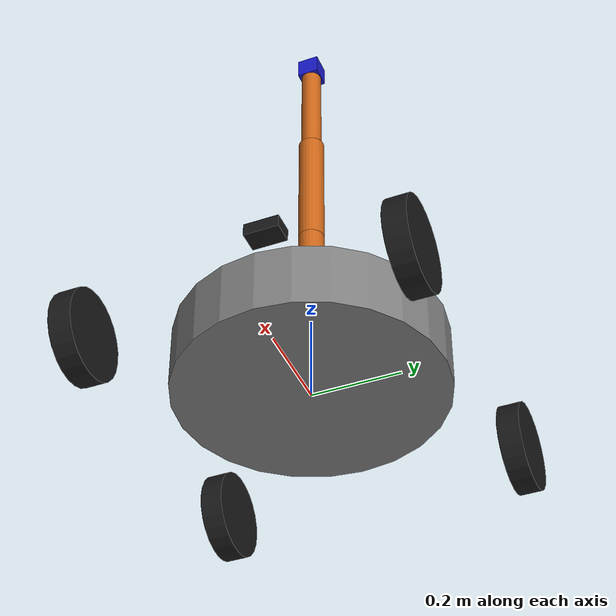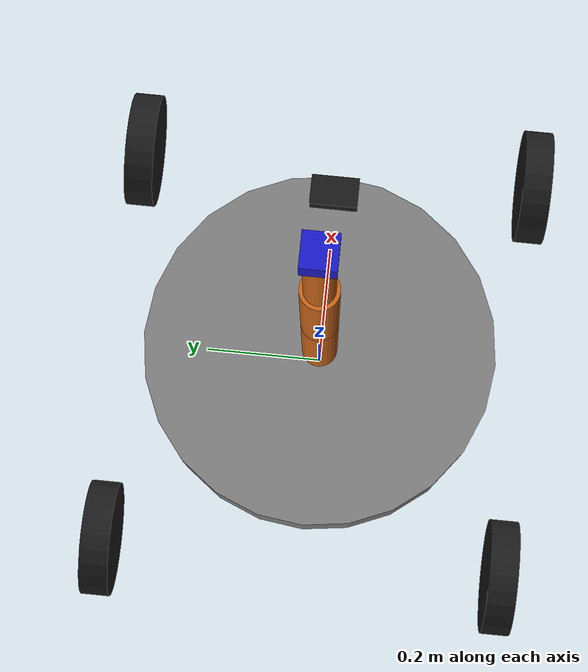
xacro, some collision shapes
<?xml version="1.0"?>
<robot xmlns:xacro="http://www.ros.org/wiki/xacro" name="complex_robot">
  <!-- Complex robot with includes and multiple components -->

  <!-- Include common macros -->
  <xacro:include filename="$(find test_robot)/common_macros.xacro"/>

  <!-- Robot properties -->
  <xacro:property name="base_mass" value="15.0"/>
  <xacro:property name="base_radius" value="0.3"/>
  <xacro:property name="base_height" value="0.15"/>

  <xacro:property name="wheel_radius" value="0.1"/>
  <xacro:property name="wheel_length" value="0.05"/>
  <xacro:property name="wheel_mass" value="1.0"/>
  <xacro:property name="wheel_offset" value="0.35"/>

  <xacro:property name="arm_segment_length" value="0.3"/>
  <xacro:property name="arm_segment_radius" value="0.03"/>
  <xacro:property name="arm_segment_mass" value="1.5"/>

  <!-- Base link -->
  <link name="base_link">
    <visual>
      <origin xyz="0 0 ${base_height/2}" rpy="0 0 0"/>
      <geometry>
        <cylinder radius="${base_radius}" length="${base_height}"/>
      </geometry>
      <material name="base_color">
        <color rgba="0.5 0.5 0.5 1"/>
      </material>
    </visual>
    <collision>
      <origin xyz="0 0 ${base_height/2}" rpy="0 0 0"/>
      <geometry>
        <cylinder radius="${base_radius}" length="${base_height}"/>
      </geometry>
    </collision>
    <inertial>
      <origin xyz="0 0 ${base_height/2}" rpy="0 0 0"/>
      <mass value="${base_mass}"/>
      <inertia ixx="${base_mass * (3 * base_radius * base_radius + base_height * base_height) / 12}"
               ixy="0" ixz="0"
               iyy="${base_mass * (3 * base_radius * base_radius + base_height * base_height) / 12}"
               iyz="0"
               izz="${base_mass * base_radius * base_radius / 2}"/>
    </inertial>
  </link>

  <!-- Wheels using macro -->
  <xacro:wheel name="front_left_wheel" parent="base_link"
               origin_xyz="${wheel_offset} ${wheel_offset} 0" origin_rpy="1.57079 0 0"
               radius="${wheel_radius}" length="${wheel_length}" mass="${wheel_mass}"/>

  <xacro:wheel name="front_right_wheel" parent="base_link"
               origin_xyz="${wheel_offset} ${-wheel_offset} 0" origin_rpy="1.57079 0 0"
               radius="${wheel_radius}" length="${wheel_length}" mass="${wheel_mass}"/>

  <xacro:wheel name="rear_left_wheel" parent="base_link"
               origin_xyz="${-wheel_offset} ${wheel_offset} 0" origin_rpy="1.57079 0 0"
               radius="${wheel_radius}" length="${wheel_length}" mass="${wheel_mass}"/>

  <xacro:wheel name="rear_right_wheel" parent="base_link"
               origin_xyz="${-wheel_offset} ${-wheel_offset} 0" origin_rpy="1.57079 0 0"
               radius="${wheel_radius}" length="${wheel_length}" mass="${wheel_mass}"/>

  <!-- Robotic arm using macros -->
  <xacro:arm_segment name="arm_base" parent="base_link"
                     origin_xyz="0 0 ${base_height}" origin_rpy="0 0 0"
                     length="${arm_segment_length}" radius="${arm_segment_radius}" mass="${arm_segment_mass}"/>

  <xacro:arm_segment name="arm_segment_1" parent="arm_base"
                     origin_xyz="0 0 ${arm_segment_length}" origin_rpy="0 0 0"
                     length="${arm_segment_length}" radius="${arm_segment_radius}" mass="${arm_segment_mass}"/>

  <xacro:arm_segment name="arm_segment_2" parent="arm_segment_1"
                     origin_xyz="0 0 ${arm_segment_length}" origin_rpy="0 0 0"
                     length="${arm_segment_length * 0.8}" radius="${arm_segment_radius * 0.8}" mass="${arm_segment_mass * 0.8}"/>

  <!-- End effector -->
  <link name="end_effector">
    <visual>
      <origin xyz="0 0 0.025" rpy="0 0 0"/>
      <geometry>
        <mesh filename="package://test_robot/meshes/gripper.stl" scale="0.001 0.001 0.001"/>
      </geometry>
      <material name="gripper_color">
        <color rgba="0.1 0.1 0.8 1"/>
      </material>
    </visual>
    <collision>
      <origin xyz="0 0 0.025" rpy="0 0 0"/>
      <geometry>
        <box size="0.05 0.05 0.05"/>
      </geometry>
    </collision>
    <inertial>
      <mass value="0.5"/>
      <inertia ixx="0.001" ixy="0" ixz="0" iyy="0.001" iyz="0" izz="0.001"/>
    </inertial>
  </link>

  <joint name="end_effector_joint" type="fixed">
    <parent link="arm_segment_2"/>
    <child link="end_effector"/>
    <origin xyz="0 0 ${arm_segment_length * 0.8}" rpy="0 0 0"/>
  </joint>

  <!-- Camera sensor -->
  <link name="camera_link">
    <visual>
      <origin xyz="0 0 0" rpy="0 0 0"/>
      <geometry>
        <box size="0.05 0.08 0.03"/>
      </geometry>
      <material name="camera_color">
        <color rgba="0.1 0.1 0.1 1"/>
      </material>
    </visual>
    <collision>
      <origin xyz="0 0 0" rpy="0 0 0"/>
      <geometry>
        <box size="0.05 0.08 0.03"/>
      </geometry>
    </collision>
    <inertial>
      <mass value="0.2"/>
      <inertia ixx="0.0001" ixy="0" ixz="0" iyy="0.0001" iyz="0" izz="0.0001"/>
    </inertial>
  </link>

  <joint name="camera_joint" type="revolute">
    <parent link="base_link"/>
    <child link="camera_link"/>
    <origin xyz="0.25 0 ${base_height + 0.1}" rpy="0 0 0"/>
    <axis xyz="0 0 1"/>
    <limit lower="-1.57" upper="1.57" effort="5" velocity="0.5"/>
  </joint>
</robot>

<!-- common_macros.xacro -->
<robot xmlns:xacro="http://www.ros.org/wiki/xacro">
  <!-- Common macros for robot parts -->

  <xacro:macro name="wheel" params="name parent origin_xyz origin_rpy radius length mass">
    <link name="${name}">
      <visual>
        <origin xyz="0 0 0" rpy="0 0 0"/>
        <geometry>
          <cylinder radius="${radius}" length="${length}"/>
        </geometry>
        <material name="black">
          <color rgba="0.1 0.1 0.1 1"/>
        </material>
      </visual>
      <collision>
        <origin xyz="0 0 0" rpy="0 0 0"/>
        <geometry>
          <cylinder radius="${radius}" length="${length}"/>
        </geometry>
      </collision>
      <inertial>
        <mass value="${mass}"/>
        <inertia ixx="${mass * (3 * radius * radius + length * length) / 12}"
                 ixy="0" ixz="0"
                 iyy="${mass * (3 * radius * radius + length * length) / 12}"
                 iyz="0"
                 izz="${mass * radius * radius / 2}"/>
      </inertial>
    </link>

    <joint name="${name}_joint" type="continuous">
      <parent link="${parent}"/>
      <child link="${name}"/>
      <origin xyz="${origin_xyz}" rpy="${origin_rpy}"/>
      <axis xyz="0 0 1"/>
      <dynamics damping="0.1" friction="0.1"/>
    </joint>
  </xacro:macro>

  <xacro:macro name="arm_segment" params="name parent origin_xyz origin_rpy length radius mass joint_type:=revolute lower:=-1.57 upper:=1.57">
    <link name="${name}">
      <visual>
        <origin xyz="0 0 ${length/2}" rpy="0 0 0"/>
        <geometry>
          <cylinder radius="${radius}" length="${length}"/>
        </geometry>
        <material name="arm_color">
          <color rgba="0.8 0.4 0.1 1"/>
        </material>
      </visual>
      <collision>
        <origin xyz="0 0 ${length/2}" rpy="0 0 0"/>
        <geometry>
          <cylinder radius="${radius}" length="${length}"/>
        </geometry>
      </collision>
      <inertial>
        <origin xyz="0 0 ${length/2}" rpy="0 0 0"/>
        <mass value="${mass}"/>
        <inertia ixx="${mass * (3 * radius * radius + length * length) / 12}"
                 ixy="0" ixz="0"
                 iyy="${mass * (3 * radius * radius + length * length) / 12}"
                 iyz="0"
                 izz="${mass * radius * radius / 2}"/>
      </inertial>
    </link>

    <joint name="${name}_joint" type="${joint_type}">
      <parent link="${parent}"/>
      <child link="${name}"/>
      <origin xyz="${origin_xyz}" rpy="${origin_rpy}"/>
      <axis xyz="0 0 1"/>
      <xacro:if value="${joint_type == 'revolute'}">
        <limit lower="${lower}" upper="${upper}" effort="10" velocity="1"/>
      </xacro:if>
      <dynamics damping="0.5" friction="0.1"/>
    </joint>
  </xacro:macro>
</robot>
